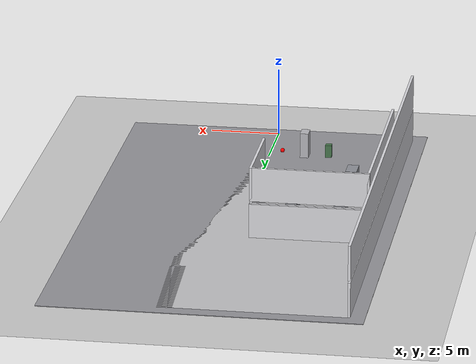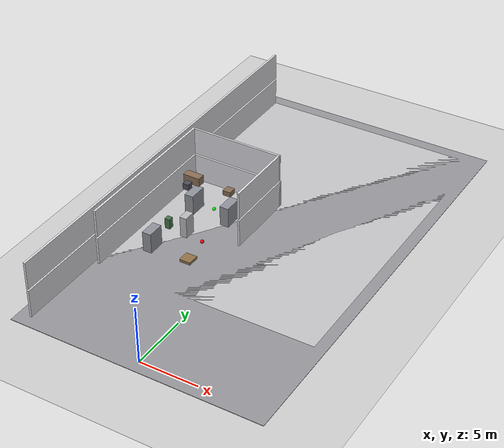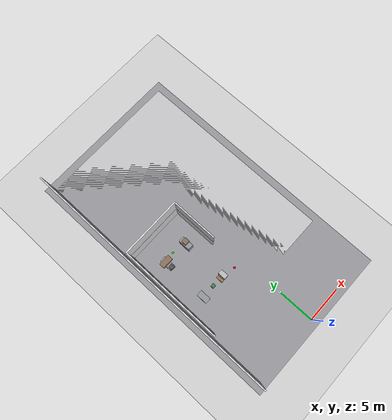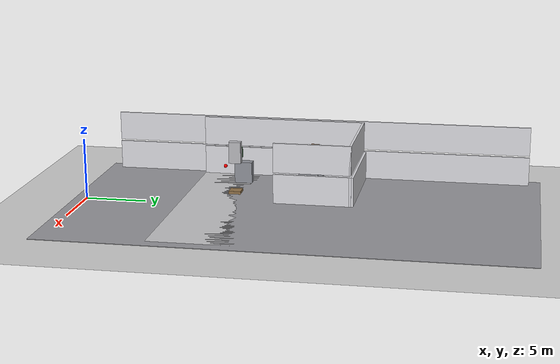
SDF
<sdf version="1.7">
 <world name="generated_world">
  <include><uri>model://sun</uri></include>
  <include><uri>model://ground_plane</uri></include>
  <model name="generated_building">
   <static>true</static>
   <link name="foundation">
    <pose>0.0000 18.0000 -0.1500 0.0000 0.0000 0.0000</pose>
    <collision name="foundation_collision">
     <geometry><box><size>22.0000 38.0000 0.3000</size></box></geometry>
    </collision>
    <visual name="foundation_visual">
     <geometry><box><size>22.0000 38.0000 0.3000</size></box></geometry>
     <material><ambient>0.58 0.58 0.60 1</ambient><diffuse>0.58 0.58 0.60 1</diffuse></material>
    </visual>
    <gravity>false</gravity>
   </link>
   <link name="slab_floor_0_0">
    <pose>0.0000 21.9250 -0.1100 0.0000 0.0000 0.0000</pose>
    <collision name="slab_floor_0_0_collision">
     <geometry><box><size>20.0000 28.1500 0.2200</size></box></geometry>
    </collision>
    <visual name="slab_floor_0_0_visual">
     <geometry><box><size>20.0000 28.1500 0.2200</size></box></geometry>
     <material><ambient>0.76 0.76 0.77 1</ambient><diffuse>0.76 0.76 0.77 1</diffuse></material>
    </visual>
    <gravity>false</gravity>
   </link>
   <link name="exterior_west_floor_0">
    <pose>-9.9100 18.0000 1.2250 0.0000 0.0000 0.0000</pose>
    <collision name="exterior_west_floor_0_collision">
     <geometry><box><size>0.1800 36.0000 2.4500</size></box></geometry>
    </collision>
    <visual name="exterior_west_floor_0_visual">
     <geometry><box><size>0.1800 36.0000 2.4500</size></box></geometry>
     <material><ambient>0.86 0.86 0.88 1</ambient><diffuse>0.86 0.86 0.88 1</diffuse></material>
    </visual>
    <gravity>false</gravity>
   </link>
   <link name="floor_0_room_0_corridor_wall_upper">
    <pose>-1.1900 18.6725 1.2250 0.0000 0.0000 0.0000</pose>
    <collision name="floor_0_room_0_corridor_wall_upper_collision">
     <geometry><box><size>0.1800 6.4150 2.4500</size></box></geometry>
    </collision>
    <visual name="floor_0_room_0_corridor_wall_upper_visual">
     <geometry><box><size>0.1800 6.4150 2.4500</size></box></geometry>
     <material><ambient>0.86 0.86 0.88 1</ambient><diffuse>0.86 0.86 0.88 1</diffuse></material>
    </visual>
    <gravity>false</gravity>
   </link>
   <link name="floor_0_room_0_west_wall">
    <pose>-9.4100 14.8650 1.2250 0.0000 0.0000 0.0000</pose>
    <collision name="floor_0_room_0_west_wall_collision">
     <geometry><box><size>0.1800 14.0300 2.4500</size></box></geometry>
    </collision>
    <visual name="floor_0_room_0_west_wall_visual">
     <geometry><box><size>0.1800 14.0300 2.4500</size></box></geometry>
     <material><ambient>0.86 0.86 0.88 1</ambient><diffuse>0.86 0.86 0.88 1</diffuse></material>
    </visual>
    <gravity>false</gravity>
   </link>
   <link name="floor_0_room_0_north_wall">
    <pose>-5.3000 21.7900 1.2250 0.0000 0.0000 0.0000</pose>
    <collision name="floor_0_room_0_north_wall_collision">
     <geometry><box><size>8.4000 0.1800 2.4500</size></box></geometry>
    </collision>
    <visual name="floor_0_room_0_north_wall_visual">
     <geometry><box><size>8.4000 0.1800 2.4500</size></box></geometry>
     <material><ambient>0.86 0.86 0.88 1</ambient><diffuse>0.86 0.86 0.88 1</diffuse></material>
    </visual>
    <gravity>false</gravity>
   </link>
   <link name="floor_0_room_2_south_wall">
    <pose>-5.3000 21.9700 1.2250 0.0000 0.0000 0.0000</pose>
    <collision name="floor_0_room_2_south_wall_collision">
     <geometry><box><size>8.4000 0.1800 2.4500</size></box></geometry>
    </collision>
    <visual name="floor_0_room_2_south_wall_visual">
     <geometry><box><size>8.4000 0.1800 2.4500</size></box></geometry>
     <material><ambient>0.86 0.86 0.88 1</ambient><diffuse>0.86 0.86 0.88 1</diffuse></material>
    </visual>
    <gravity>false</gravity>
   </link>
   <link name="floor_0_room_0_rack_a">
    <pose>-7.0000 17.9225 0.9000 0.0000 0.0000 0.0000</pose>
    <collision name="floor_0_room_0_rack_a_collision">
     <geometry><box><size>0.8000 1.6000 1.8000</size></box></geometry>
    </collision>
    <visual name="floor_0_room_0_rack_a_visual">
     <geometry><box><size>0.8000 1.6000 1.8000</size></box></geometry>
     <material><ambient>0.56 0.57 0.60 1</ambient><diffuse>0.56 0.57 0.60 1</diffuse></material>
    </visual>
    <gravity>false</gravity>
   </link>
   <link name="floor_0_room_0_rack_b">
    <pose>-3.6000 17.9225 0.9000 0.0000 0.0000 0.0000</pose>
    <collision name="floor_0_room_0_rack_b_collision">
     <geometry><box><size>0.8000 1.6000 1.8000</size></box></geometry>
    </collision>
    <visual name="floor_0_room_0_rack_b_visual">
     <geometry><box><size>0.8000 1.6000 1.8000</size></box></geometry>
     <material><ambient>0.56 0.57 0.60 1</ambient><diffuse>0.56 0.57 0.60 1</diffuse></material>
    </visual>
    <gravity>false</gravity>
   </link>
   <link name="floor_0_room_0_rack_c">
    <pose>-7.0000 11.8075 0.9000 0.0000 0.0000 0.0000</pose>
    <collision name="floor_0_room_0_rack_c_collision">
     <geometry><box><size>0.8000 1.5000 1.8000</size></box></geometry>
    </collision>
    <visual name="floor_0_room_0_rack_c_visual">
     <geometry><box><size>0.8000 1.5000 1.8000</size></box></geometry>
     <material><ambient>0.56 0.57 0.60 1</ambient><diffuse>0.56 0.57 0.60 1</diffuse></material>
    </visual>
    <gravity>false</gravity>
   </link>
   <link name="floor_0_room_0_pallet">
    <pose>-3.6000 11.8075 0.1200 0.0000 0.0000 0.0000</pose>
    <collision name="floor_0_room_0_pallet_collision">
     <geometry><box><size>1.0000 1.0000 0.2400</size></box></geometry>
    </collision>
    <visual name="floor_0_room_0_pallet_visual">
     <geometry><box><size>1.0000 1.0000 0.2400</size></box></geometry>
     <material><ambient>0.56 0.44 0.28 1</ambient><diffuse>0.56 0.44 0.28 1</diffuse></material>
    </visual>
    <gravity>false</gravity>
   </link>
   <link name="exterior_west_floor_1">
    <pose>-9.9100 18.0000 3.8250 0.0000 0.0000 0.0000</pose>
    <collision name="exterior_west_floor_1_collision">
     <geometry><box><size>0.1800 36.0000 2.4500</size></box></geometry>
    </collision>
    <visual name="exterior_west_floor_1_visual">
     <geometry><box><size>0.1800 36.0000 2.4500</size></box></geometry>
     <material><ambient>0.86 0.86 0.88 1</ambient><diffuse>0.86 0.86 0.88 1</diffuse></material>
    </visual>
    <gravity>false</gravity>
   </link>
   <link name="floor_1_room_0_corridor_wall_upper">
    <pose>-1.1900 18.6725 3.8250 0.0000 0.0000 0.0000</pose>
    <collision name="floor_1_room_0_corridor_wall_upper_collision">
     <geometry><box><size>0.1800 6.4150 2.4500</size></box></geometry>
    </collision>
    <visual name="floor_1_room_0_corridor_wall_upper_visual">
     <geometry><box><size>0.1800 6.4150 2.4500</size></box></geometry>
     <material><ambient>0.86 0.86 0.88 1</ambient><diffuse>0.86 0.86 0.88 1</diffuse></material>
    </visual>
    <gravity>false</gravity>
   </link>
   <link name="floor_1_room_0_west_wall">
    <pose>-9.4100 14.8650 3.8250 0.0000 0.0000 0.0000</pose>
    <collision name="floor_1_room_0_west_wall_collision">
     <geometry><box><size>0.1800 14.0300 2.4500</size></box></geometry>
    </collision>
    <visual name="floor_1_room_0_west_wall_visual">
     <geometry><box><size>0.1800 14.0300 2.4500</size></box></geometry>
     <material><ambient>0.86 0.86 0.88 1</ambient><diffuse>0.86 0.86 0.88 1</diffuse></material>
    </visual>
    <gravity>false</gravity>
   </link>
   <link name="floor_1_room_0_north_wall">
    <pose>-5.3000 21.7900 3.8250 0.0000 0.0000 0.0000</pose>
    <collision name="floor_1_room_0_north_wall_collision">
     <geometry><box><size>8.4000 0.1800 2.4500</size></box></geometry>
    </collision>
    <visual name="floor_1_room_0_north_wall_visual">
     <geometry><box><size>8.4000 0.1800 2.4500</size></box></geometry>
     <material><ambient>0.86 0.86 0.88 1</ambient><diffuse>0.86 0.86 0.88 1</diffuse></material>
    </visual>
    <gravity>false</gravity>
   </link>
   <link name="floor_1_room_0_desk">
    <pose>-7.0000 17.9225 3.0500 0.0000 0.0000 0.0000</pose>
    <collision name="floor_1_room_0_desk_collision">
     <geometry><box><size>1.5000 0.7000 0.7500</size></box></geometry>
    </collision>
    <visual name="floor_1_room_0_desk_visual">
     <geometry><box><size>1.5000 0.7000 0.7500</size></box></geometry>
     <material><ambient>0.54 0.43 0.34 1</ambient><diffuse>0.54 0.43 0.34 1</diffuse></material>
    </visual>
    <gravity>false</gravity>
   </link>
   <link name="floor_1_room_0_chair">
    <pose>-7.0000 17.0225 2.8800 0.0000 0.0000 0.0000</pose>
    <collision name="floor_1_room_0_chair_collision">
     <geometry><box><size>0.5500 0.5500 0.5500</size></box></geometry>
    </collision>
    <visual name="floor_1_room_0_chair_visual">
     <geometry><box><size>0.5500 0.5500 0.5500</size></box></geometry>
     <material><ambient>0.30 0.30 0.34 1</ambient><diffuse>0.30 0.30 0.34 1</diffuse></material>
    </visual>
    <gravity>false</gravity>
   </link>
   <link name="floor_1_room_0_cabinet">
    <pose>-3.6000 11.8075 3.5000 0.0000 0.0000 0.0000</pose>
    <collision name="floor_1_room_0_cabinet_collision">
     <geometry><box><size>0.6000 1.0000 1.8000</size></box></geometry>
    </collision>
    <visual name="floor_1_room_0_cabinet_visual">
     <geometry><box><size>0.6000 1.0000 1.8000</size></box></geometry>
     <material><ambient>0.72 0.72 0.74 1</ambient><diffuse>0.72 0.72 0.74 1</diffuse></material>
    </visual>
    <gravity>false</gravity>
   </link>
   <link name="floor_1_room_0_side_table">
    <pose>-3.6000 17.9225 2.9200 0.0000 0.0000 0.0000</pose>
    <collision name="floor_1_room_0_side_table_collision">
     <geometry><box><size>0.7000 0.7000 0.4500</size></box></geometry>
    </collision>
    <visual name="floor_1_room_0_side_table_visual">
     <geometry><box><size>0.7000 0.7000 0.4500</size></box></geometry>
     <material><ambient>0.52 0.42 0.33 1</ambient><diffuse>0.52 0.42 0.33 1</diffuse></material>
    </visual>
    <gravity>false</gravity>
   </link>
   <link name="floor_1_room_0_planter">
    <pose>-5.3000 11.8075 3.0500 0.0000 0.0000 0.0000</pose>
    <collision name="floor_1_room_0_planter_collision">
     <geometry><box><size>0.4500 0.4500 0.9000</size></box></geometry>
    </collision>
    <visual name="floor_1_room_0_planter_visual">
     <geometry><box><size>0.4500 0.4500 0.9000</size></box></geometry>
     <material><ambient>0.28 0.46 0.30 1</ambient><diffuse>0.28 0.46 0.30 1</diffuse></material>
    </visual>
    <gravity>false</gravity>
   </link>
  </model>
  <model name="danger_red_sphere_01">
   <static>true</static>
   <pose>-1.920021 11.372773 2.750000 0.000000 0.000000 0.000000</pose>
   <link name="link">
    <collision name="collision"><geometry><sphere><radius>0.150</radius></sphere></geometry></collision>
    <visual name="visual">
     <geometry><sphere><radius>0.150</radius></sphere></geometry>
     <material><ambient>1.0 0.0 0.0 1.0</ambient><diffuse>1.0 0.0 0.0 1.0</diffuse></material>
    </visual>
   </link>
  </model>
  <model name="distractor_green_sphere_02">
   <static>true</static>
   <pose>-5.490704 18.557317 0.150000 0.000000 0.000000 0.000000</pose>
   <link name="link">
    <collision name="collision"><geometry><sphere><radius>0.150</radius></sphere></geometry></collision>
    <visual name="visual">
     <geometry><sphere><radius>0.150</radius></sphere></geometry>
     <material><ambient>0.0 1.0 0.0 1.0</ambient><diffuse>0.0 1.0 0.0 1.0</diffuse></material>
    </visual>
   </link>
  </model>
 </world>
</sdf>
